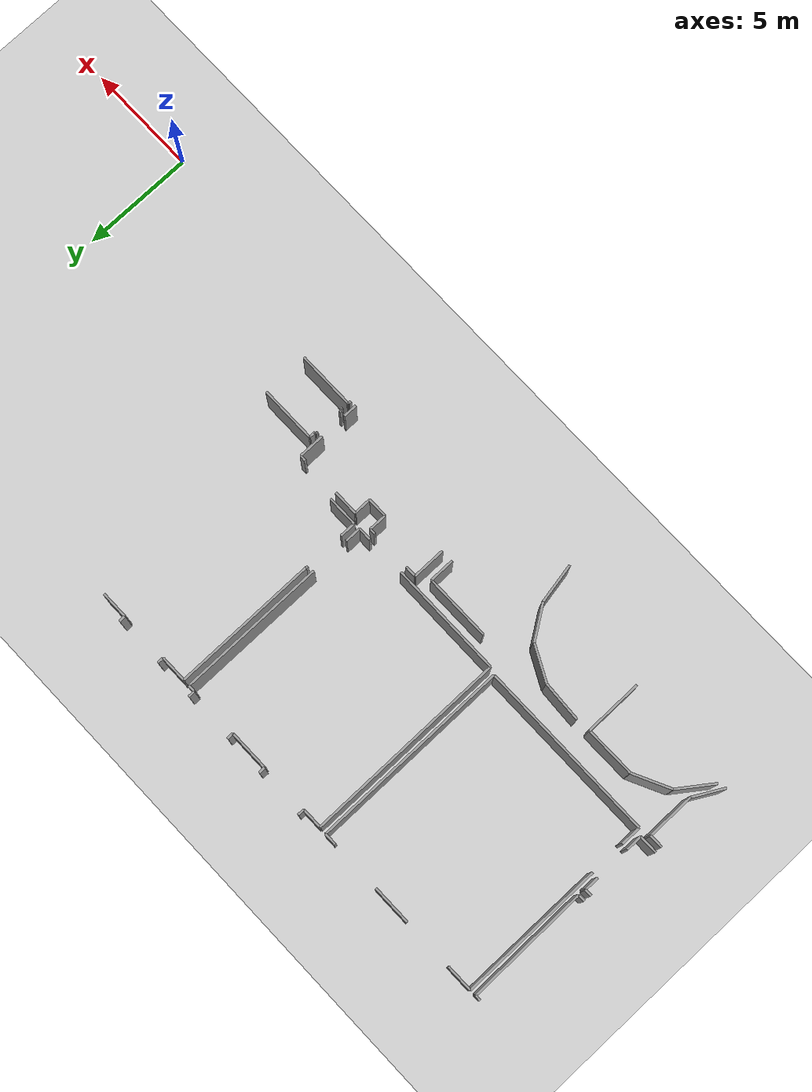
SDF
<sdf version="1.6">
 <world name="default">
  <model name="ground_plane">
   <static>1</static>
   <link name="link">
    <collision name="collision">
     <geometry><plane><normal>0 0 1</normal><size>100 100</size></plane></geometry>
     <surface><friction><ode><mu>100</mu><mu2>50</mu2></ode></friction></surface>
    </collision>
    <visual name="visual">
     <cast_shadows>0</cast_shadows>
     <geometry><plane><normal>0 0 1</normal><size>100 100</size></plane></geometry>
     <material>
      <script><uri>file://media/materials/scripts/gazebo.material</uri><name>Gazebo/Grey</name></script>
     </material>
    </visual>
   </link>
  </model>
  <model name="0510032268_A_40_1_102">
   <static>1</static>
   <link name="Wall_12">
    <collision name="Wall_12_Collision">
     <geometry><box><size>0.304701931683 0.1 2.5</size></box></geometry>
     <pose>0.152350965842 0 1.25 0 0 0</pose>
    </collision>
    <visual name="Wall_12_Visual">
     <pose>0.152350965842 0 1.25 0 0 0</pose>
     <geometry><box><size>0.304701931683 0.1 2.5</size></box></geometry>
     <material>
      <script><uri>file://media/materials/scripts/gazebo.material</uri><name>Gazebo/Grey</name></script>
      <ambient>1 1 1 1</ambient>
     </material>
    </visual>
    <pose>15.3115259854 -5.71620823838 0 0 0 3.14159265359</pose>
   </link>
   <link name="Wall_17">
    <collision name="Wall_17_Collision">
     <geometry><box><size>0.248205115184 0.1 2.5</size></box></geometry>
     <pose>0.124102557592 0 1.25 0 0 0</pose>
    </collision>
    <visual name="Wall_17_Visual">
     <pose>0.124102557592 0 1.25 0 0 0</pose>
     <geometry><box><size>0.248205115184 0.1 2.5</size></box></geometry>
     <material>
      <script><uri>file://media/materials/scripts/gazebo.material</uri><name>Gazebo/Grey</name></script>
      <ambient>1 1 1 1</ambient>
     </material>
    </visual>
    <pose>15.0234557008 -0.291752099587 0 0 0 0.0</pose>
   </link>
   <link name="Wall_18">
    <collision name="Wall_18_Collision">
     <geometry><box><size>5.42460262447 0.1 2.5</size></box></geometry>
     <pose>2.71230131223 0 1.25 0 0 0</pose>
    </collision>
    <visual name="Wall_18_Visual">
     <pose>2.71230131223 0 1.25 0 0 0</pose>
     <geometry><box><size>5.42460262447 0.1 2.5</size></box></geometry>
     <material>
      <script><uri>file://media/materials/scripts/gazebo.material</uri><name>Gazebo/Grey</name></script>
      <ambient>1 1 1 1</ambient>
     </material>
    </visual>
    <pose>15.271660816 -0.291752099587 0 0 0 -1.56344730402</pose>
   </link>
   <link name="Wall_19">
    <collision name="Wall_19_Collision">
     <geometry><box><size>8.01759653655 0.1 2.5</size></box></geometry>
     <pose>4.00879826828 0 1.25 0 0 0</pose>
    </collision>
    <visual name="Wall_19_Visual">
     <pose>4.00879826828 0 1.25 0 0 0</pose>
     <geometry><box><size>8.01759653655 0.1 2.5</size></box></geometry>
     <material>
      <script><uri>file://media/materials/scripts/gazebo.material</uri><name>Gazebo/Grey</name></script>
      <ambient>1 1 1 1</ambient>
     </material>
    </visual>
    <pose>23.5752962909 -9.15299210949 0 0 0 3.14159265359</pose>
   </link>
   <link name="Wall_20">
    <collision name="Wall_20_Collision">
     <geometry><box><size>0.89645847484 0.1 2.5</size></box></geometry>
     <pose>0.44822923742 0 1.25 0 0 0</pose>
    </collision>
    <visual name="Wall_20_Visual">
     <pose>0.44822923742 0 1.25 0 0 0</pose>
     <geometry><box><size>0.89645847484 0.1 2.5</size></box></geometry>
     <material>
      <script><uri>file://media/materials/scripts/gazebo.material</uri><name>Gazebo/Grey</name></script>
      <ambient>1 1 1 1</ambient>
     </material>
    </visual>
    <pose>15.5576997543 -9.15299210949 0 0 0 1.57079632679</pose>
   </link>
   <link name="Wall_21">
    <collision name="Wall_21_Collision">
     <geometry><box><size>6.41892706832 0.1 2.5</size></box></geometry>
     <pose>3.20946353416 0 1.25 0 0 0</pose>
    </collision>
    <visual name="Wall_21_Visual">
     <pose>3.20946353416 0 1.25 0 0 0</pose>
     <geometry><box><size>6.41892706832 0.1 2.5</size></box></geometry>
     <material>
      <script><uri>file://media/materials/scripts/gazebo.material</uri><name>Gazebo/Grey</name></script>
      <ambient>1 1 1 1</ambient>
     </material>
    </visual>
    <pose>15.5576997543 -6.69493623477 0 0 0 1.57079632679</pose>
   </link>
   <link name="Wall_22">
    <collision name="Wall_22_Collision">
     <geometry><box><size>1.1857983508 0.1 2.5</size></box></geometry>
     <pose>0.5928991754 0 1.25 0 0 0</pose>
    </collision>
    <visual name="Wall_22_Visual">
     <pose>0.5928991754 0 1.25 0 0 0</pose>
     <geometry><box><size>1.1857983508 0.1 2.5</size></box></geometry>
     <material>
      <script><uri>file://media/materials/scripts/gazebo.material</uri><name>Gazebo/Grey</name></script>
      <ambient>1 1 1 1</ambient>
     </material>
    </visual>
    <pose>15.5576997543 -0.27600916645 0 0 0 0.0</pose>
   </link>
   <link name="Wall_23">
    <collision name="Wall_23_Collision">
     <geometry><box><size>1.72956433972 0.1 2.5</size></box></geometry>
     <pose>0.864782169859 0 1.25 0 0 0</pose>
    </collision>
    <visual name="Wall_23_Visual">
     <pose>0.864782169859 0 1.25 0 0 0</pose>
     <geometry><box><size>1.72956433972 0.1 2.5</size></box></geometry>
     <material>
      <script><uri>file://media/materials/scripts/gazebo.material</uri><name>Gazebo/Grey</name></script>
      <ambient>1 1 1 1</ambient>
     </material>
    </visual>
    <pose>19.0285086745 -0.27600916645 0 0 0 0.0</pose>
   </link>
   <link name="Wall_24">
    <collision name="Wall_24_Collision">
     <geometry><box><size>0.523833404219 0.1 2.5</size></box></geometry>
     <pose>0.261916702109 0 1.25 0 0 0</pose>
    </collision>
    <visual name="Wall_24_Visual">
     <pose>0.261916702109 0 1.25 0 0 0</pose>
     <geometry><box><size>0.523833404219 0.1 2.5</size></box></geometry>
     <material>
      <script><uri>file://media/materials/scripts/gazebo.material</uri><name>Gazebo/Grey</name></script>
      <ambient>1 1 1 1</ambient>
     </material>
    </visual>
    <pose>23.0367356266 -0.27600916645 0 0 0 0.0</pose>
   </link>
   <link name="Wall_25">
    <collision name="Wall_25_Collision">
     <geometry><box><size>8.87699515958 0.1 2.5</size></box></geometry>
     <pose>4.43849757979 0 1.25 0 0 0</pose>
    </collision>
    <visual name="Wall_25_Visual">
     <pose>4.43849757979 0 1.25 0 0 0</pose>
     <geometry><box><size>8.87699515958 0.1 2.5</size></box></geometry>
     <material>
      <script><uri>file://media/materials/scripts/gazebo.material</uri><name>Gazebo/Grey</name></script>
      <ambient>1 1 1 1</ambient>
     </material>
    </visual>
    <pose>23.5605690309 -0.27600916645 0 0 0 -1.56913728942</pose>
   </link>
   <link name="Wall_31">
    <collision name="Wall_31_Collision">
     <geometry><box><size>0.31549345843 0.1 2.5</size></box></geometry>
     <pose>0.157746729215 0 1.25 0 0 0</pose>
    </collision>
    <visual name="Wall_31_Visual">
     <pose>0.157746729215 0 1.25 0 0 0</pose>
     <geometry><box><size>0.31549345843 0.1 2.5</size></box></geometry>
     <material>
      <script><uri>file://media/materials/scripts/gazebo.material</uri><name>Gazebo/Grey</name></script>
      <ambient>1 1 1 1</ambient>
     </material>
    </visual>
    <pose>14.9661971295 -6.03360608388 0 0 0 0.0</pose>
   </link>
   <link name="Wall_32">
    <collision name="Wall_32_Collision">
     <geometry><box><size>0.651300378973 0.1 2.5</size></box></geometry>
     <pose>0.325650189487 0 1.25 0 0 0</pose>
    </collision>
    <visual name="Wall_32_Visual">
     <pose>0.325650189487 0 1.25 0 0 0</pose>
     <geometry><box><size>0.651300378973 0.1 2.5</size></box></geometry>
     <material>
      <script><uri>file://media/materials/scripts/gazebo.material</uri><name>Gazebo/Grey</name></script>
      <ambient>1 1 1 1</ambient>
     </material>
    </visual>
    <pose>15.2816905879 -6.03360608388 0 0 0 -1.57079632679</pose>
   </link>
   <link name="Wall_33">
    <collision name="Wall_33_Collision">
     <geometry><box><size>0.729634167243 0.1 2.5</size></box></geometry>
     <pose>0.364817083622 0 1.25 0 0 0</pose>
    </collision>
    <visual name="Wall_33_Visual">
     <pose>0.364817083622 0 1.25 0 0 0</pose>
     <geometry><box><size>0.729634167243 0.1 2.5</size></box></geometry>
     <material>
      <script><uri>file://media/materials/scripts/gazebo.material</uri><name>Gazebo/Grey</name></script>
      <ambient>1 1 1 1</ambient>
     </material>
    </visual>
    <pose>15.2816905879 -8.23291923494 0 0 0 -1.57079632679</pose>
   </link>
   <link name="Wall_34">
    <collision name="Wall_34_Collision">
     <geometry><box><size>0.8145698307 0.1 2.5</size></box></geometry>
     <pose>0.40728491535 0 1.25 0 0 0</pose>
    </collision>
    <visual name="Wall_34_Visual">
     <pose>0.40728491535 0 1.25 0 0 0</pose>
     <geometry><box><size>0.8145698307 0.1 2.5</size></box></geometry>
     <material>
      <script><uri>file://media/materials/scripts/gazebo.material</uri><name>Gazebo/Grey</name></script>
      <ambient>1 1 1 1</ambient>
     </material>
    </visual>
    <pose>15.2816905879 -8.96255340219 0 0 0 3.14159265359</pose>
   </link>
   <link name="Wall_44">
    <collision name="Wall_44_Collision">
     <geometry><box><size>0.592645257124 0.1 2.5</size></box></geometry>
     <pose>0.296322628562 0 1.25 0 0 0</pose>
    </collision>
    <visual name="Wall_44_Visual">
     <pose>0.296322628562 0 1.25 0 0 0</pose>
     <geometry><box><size>0.592645257124 0.1 2.5</size></box></geometry>
     <material>
      <script><uri>file://media/materials/scripts/gazebo.material</uri><name>Gazebo/Grey</name></script>
      <ambient>1 1 1 1</ambient>
     </material>
    </visual>
    <pose>14.4508699875 -9.26116129524 0 0 0 0.0</pose>
   </link>
   <link name="Wall_45">
    <collision name="Wall_45_Collision">
     <geometry><box><size>2.13684925507 0.1 2.5</size></box></geometry>
     <pose>1.06842462753 0 1.25 0 0 0</pose>
    </collision>
    <visual name="Wall_45_Visual">
     <pose>1.06842462753 0 1.25 0 0 0</pose>
     <geometry><box><size>2.13684925507 0.1 2.5</size></box></geometry>
     <material>
      <script><uri>file://media/materials/scripts/gazebo.material</uri><name>Gazebo/Grey</name></script>
      <ambient>1 1 1 1</ambient>
     </material>
    </visual>
    <pose>15.0435152446 -9.26116129524 0 0 0 -1.57079632679</pose>
   </link>
   <link name="Wall_46">
    <collision name="Wall_46_Collision">
     <geometry><box><size>1.42423533648 0.1 2.5</size></box></geometry>
     <pose>0.71211766824 0 1.25 0 0 0</pose>
    </collision>
    <visual name="Wall_46_Visual">
     <pose>0.71211766824 0 1.25 0 0 0</pose>
     <geometry><box><size>1.42423533648 0.1 2.5</size></box></geometry>
     <material>
      <script><uri>file://media/materials/scripts/gazebo.material</uri><name>Gazebo/Grey</name></script>
      <ambient>1 1 1 1</ambient>
     </material>
    </visual>
    <pose>15.0435152446 -11.3980105503 0 0 0 -2.07759179302</pose>
   </link>
   <link name="Wall_105">
    <collision name="Wall_105_Collision">
     <geometry><box><size>1.72159726495 0.1 2.5</size></box></geometry>
     <pose>0.860798632477 0 1.25 0 0 0</pose>
    </collision>
    <visual name="Wall_105_Visual">
     <pose>0.860798632477 0 1.25 0 0 0</pose>
     <geometry><box><size>1.72159726495 0.1 2.5</size></box></geometry>
     <material>
      <script><uri>file://media/materials/scripts/gazebo.material</uri><name>Gazebo/Grey</name></script>
      <ambient>1 1 1 1</ambient>
     </material>
    </visual>
    <pose>14.7096127111 -12.5133465794 0 0 0 0.943800091569</pose>
   </link>
   <link name="Wall_106">
    <collision name="Wall_106_Collision">
     <geometry><box><size>1.73608395643 0.1 2.5</size></box></geometry>
     <pose>0.868041978216 0 1.25 0 0 0</pose>
    </collision>
    <visual name="Wall_106_Visual">
     <pose>0.868041978216 0 1.25 0 0 0</pose>
     <geometry><box><size>1.73608395643 0.1 2.5</size></box></geometry>
     <material>
      <script><uri>file://media/materials/scripts/gazebo.material</uri><name>Gazebo/Grey</name></script>
      <ambient>1 1 1 1</ambient>
     </material>
    </visual>
    <pose>15.7196996147 -11.1192082828 0 0 0 0.452854896431</pose>
   </link>
   <link name="Wall_107">
    <collision name="Wall_107_Collision">
     <geometry><box><size>2.23720974324 0.1 2.5</size></box></geometry>
     <pose>1.11860487162 0 1.25 0 0 0</pose>
    </collision>
    <visual name="Wall_107_Visual">
     <pose>1.11860487162 0 1.25 0 0 0</pose>
     <geometry><box><size>2.23720974324 0.1 2.5</size></box></geometry>
     <material>
      <script><uri>file://media/materials/scripts/gazebo.material</uri><name>Gazebo/Grey</name></script>
      <ambient>1 1 1 1</ambient>
     </material>
    </visual>
    <pose>17.280789178 -10.359611759 0 0 0 0.00749092168315</pose>
   </link>
   <link name="Wall_108">
    <collision name="Wall_108_Collision">
     <geometry><box><size>2.55443160396 0.1 2.5</size></box></geometry>
     <pose>1.27721580198 0 1.25 0 0 0</pose>
    </collision>
    <visual name="Wall_108_Visual">
     <pose>1.27721580198 0 1.25 0 0 0</pose>
     <geometry><box><size>2.55443160396 0.1 2.5</size></box></geometry>
     <material>
      <script><uri>file://media/materials/scripts/gazebo.material</uri><name>Gazebo/Grey</name></script>
      <ambient>1 1 1 1</ambient>
     </material>
    </visual>
    <pose>19.5179361522 -10.3428531527 0 0 0 -1.56751602047</pose>
   </link>
   <link name="Wall_119">
    <collision name="Wall_119_Collision">
     <geometry><box><size>1.78924825575 0.1 2.5</size></box></geometry>
     <pose>0.894624127873 0 1.25 0 0 0</pose>
    </collision>
    <visual name="Wall_119_Visual">
     <pose>0.894624127873 0 1.25 0 0 0</pose>
     <geometry><box><size>1.78924825575 0.1 2.5</size></box></geometry>
     <material>
      <script><uri>file://media/materials/scripts/gazebo.material</uri><name>Gazebo/Grey</name></script>
      <ambient>1 1 1 1</ambient>
     </material>
    </visual>
    <pose>20.1523509658 -10.2928312523 0 0 0 -0.0560141172236</pose>
   </link>
   <link name="Wall_120">
    <collision name="Wall_120_Collision">
     <geometry><box><size>1.66882417031 0.1 2.5</size></box></geometry>
     <pose>0.834412085157 0 1.25 0 0 0</pose>
    </collision>
    <visual name="Wall_120_Visual">
     <pose>0.834412085157 0 1.25 0 0 0</pose>
     <geometry><box><size>1.66882417031 0.1 2.5</size></box></geometry>
     <material>
      <script><uri>file://media/materials/scripts/gazebo.material</uri><name>Gazebo/Grey</name></script>
      <ambient>1 1 1 1</ambient>
     </material>
    </visual>
    <pose>21.9387929995 -10.3930020123 0 0 0 -0.47256166638</pose>
   </link>
   <link name="Wall_121">
    <collision name="Wall_121_Collision">
     <geometry><box><size>1.64161559582 0.1 2.5</size></box></geometry>
     <pose>0.820807797912 0 1.25 0 0 0</pose>
    </collision>
    <visual name="Wall_121_Visual">
     <pose>0.820807797912 0 1.25 0 0 0</pose>
     <geometry><box><size>1.64161559582 0.1 2.5</size></box></geometry>
     <material>
      <script><uri>file://media/materials/scripts/gazebo.material</uri><name>Gazebo/Grey</name></script>
      <ambient>1 1 1 1</ambient>
     </material>
    </visual>
    <pose>23.424722753 -11.1525985362 0 0 0 -0.97715242745</pose>
   </link>
   <link name="Wall_122">
    <collision name="Wall_122_Collision">
     <geometry><box><size>1.78289394022 0.1 2.5</size></box></geometry>
     <pose>0.891446970112 0 1.25 0 0 0</pose>
    </collision>
    <visual name="Wall_122_Visual">
     <pose>0.891446970112 0 1.25 0 0 0</pose>
     <geometry><box><size>1.78289394022 0.1 2.5</size></box></geometry>
     <material>
      <script><uri>file://media/materials/scripts/gazebo.material</uri><name>Gazebo/Grey</name></script>
      <ambient>1 1 1 1</ambient>
     </material>
    </visual>
    <pose>24.3430181996 -12.5133465794 0 0 0 -1.38718500258</pose>
   </link>
   <link name="Wall_136">
    <collision name="Wall_136_Collision">
     <geometry><box><size>1.45939529362 0.1 2.5</size></box></geometry>
     <pose>0.729697646812 0 1.25 0 0 0</pose>
    </collision>
    <visual name="Wall_136_Visual">
     <pose>0.729697646812 0 1.25 0 0 0</pose>
     <geometry><box><size>1.45939529362 0.1 2.5</size></box></geometry>
     <material>
      <script><uri>file://media/materials/scripts/gazebo.material</uri><name>Gazebo/Grey</name></script>
      <ambient>1 1 1 1</ambient>
     </material>
    </visual>
    <pose>28.4667779675 -11.0407475354 0 0 0 1.57079632679</pose>
   </link>
   <link name="Wall_137">
    <collision name="Wall_137_Collision">
     <geometry><box><size>0.51177228609 0.1 2.5</size></box></geometry>
     <pose>0.255886143045 0 1.25 0 0 0</pose>
    </collision>
    <visual name="Wall_137_Visual">
     <pose>0.255886143045 0 1.25 0 0 0</pose>
     <geometry><box><size>0.51177228609 0.1 2.5</size></box></geometry>
     <material>
      <script><uri>file://media/materials/scripts/gazebo.material</uri><name>Gazebo/Grey</name></script>
      <ambient>1 1 1 1</ambient>
     </material>
    </visual>
    <pose>28.4667779675 -9.58135224178 0 0 0 0.0</pose>
   </link>
   <link name="Wall_138">
    <collision name="Wall_138_Collision">
     <geometry><box><size>0.257219213996 0.1 2.5</size></box></geometry>
     <pose>0.128609606998 0 1.25 0 0 0</pose>
    </collision>
    <visual name="Wall_138_Visual">
     <pose>0.128609606998 0 1.25 0 0 0</pose>
     <geometry><box><size>0.257219213996 0.1 2.5</size></box></geometry>
     <material>
      <script><uri>file://media/materials/scripts/gazebo.material</uri><name>Gazebo/Grey</name></script>
      <ambient>1 1 1 1</ambient>
     </material>
    </visual>
    <pose>30.7540738013 -9.58135224178 0 0 0 0.0</pose>
   </link>
   <link name="Wall_139">
    <collision name="Wall_139_Collision">
     <geometry><box><size>0.776609048378 0.1 2.5</size></box></geometry>
     <pose>0.388304524189 0 1.25 0 0 0</pose>
    </collision>
    <visual name="Wall_139_Visual">
     <pose>0.388304524189 0 1.25 0 0 0</pose>
     <geometry><box><size>0.776609048378 0.1 2.5</size></box></geometry>
     <material>
      <script><uri>file://media/materials/scripts/gazebo.material</uri><name>Gazebo/Grey</name></script>
      <ambient>1 1 1 1</ambient>
     </material>
    </visual>
    <pose>31.0112930153 -9.58135224178 0 0 0 -1.57079632679</pose>
   </link>
   <link name="Wall_140">
    <collision name="Wall_140_Collision">
     <geometry><box><size>0.875764135313 0.1 2.5</size></box></geometry>
     <pose>0.437882067657 0 1.25 0 0 0</pose>
    </collision>
    <visual name="Wall_140_Visual">
     <pose>0.437882067657 0 1.25 0 0 0</pose>
     <geometry><box><size>0.875764135313 0.1 2.5</size></box></geometry>
     <material>
      <script><uri>file://media/materials/scripts/gazebo.material</uri><name>Gazebo/Grey</name></script>
      <ambient>1 1 1 1</ambient>
     </material>
    </visual>
    <pose>31.0112930153 -10.3579612902 0 0 0 0.0</pose>
   </link>
   <link name="Wall_141">
    <collision name="Wall_141_Collision">
     <geometry><box><size>0.77153068285 0.1 2.5</size></box></geometry>
     <pose>0.385765341425 0 1.25 0 0 0</pose>
    </collision>
    <visual name="Wall_141_Visual">
     <pose>0.385765341425 0 1.25 0 0 0</pose>
     <geometry><box><size>0.77153068285 0.1 2.5</size></box></geometry>
     <material>
      <script><uri>file://media/materials/scripts/gazebo.material</uri><name>Gazebo/Grey</name></script>
      <ambient>1 1 1 1</ambient>
     </material>
    </visual>
    <pose>31.8870571507 -10.3579612902 0 0 0 1.57079632679</pose>
   </link>
   <link name="Wall_142">
    <collision name="Wall_142_Collision">
     <geometry><box><size>1.10378274752 0.1 2.5</size></box></geometry>
     <pose>0.551891373761 0 1.25 0 0 0</pose>
    </collision>
    <visual name="Wall_142_Visual">
     <pose>0.551891373761 0 1.25 0 0 0</pose>
     <geometry><box><size>1.10378274752 0.1 2.5</size></box></geometry>
     <material>
      <script><uri>file://media/materials/scripts/gazebo.material</uri><name>Gazebo/Grey</name></script>
      <ambient>1 1 1 1</ambient>
     </material>
    </visual>
    <pose>31.8870571507 -9.58643060731 0 0 0 0.0</pose>
   </link>
   <link name="Wall_143">
    <collision name="Wall_143_Collision">
     <geometry><box><size>0.252521725883 0.1 2.5</size></box></geometry>
     <pose>0.126260862941 0 1.25 0 0 0</pose>
    </collision>
    <visual name="Wall_143_Visual">
     <pose>0.126260862941 0 1.25 0 0 0</pose>
     <geometry><box><size>0.252521725883 0.1 2.5</size></box></geometry>
     <material>
      <script><uri>file://media/materials/scripts/gazebo.material</uri><name>Gazebo/Grey</name></script>
      <ambient>1 1 1 1</ambient>
     </material>
    </visual>
    <pose>34.7638242632 -9.58643060731 0 0 0 0.0</pose>
   </link>
   <link name="Wall_144">
    <collision name="Wall_144_Collision">
     <geometry><box><size>1.14872628245 0.1 2.5</size></box></geometry>
     <pose>0.574363141223 0 1.25 0 0 0</pose>
    </collision>
    <visual name="Wall_144_Visual">
     <pose>0.574363141223 0 1.25 0 0 0</pose>
     <geometry><box><size>1.14872628245 0.1 2.5</size></box></geometry>
     <material>
      <script><uri>file://media/materials/scripts/gazebo.material</uri><name>Gazebo/Grey</name></script>
      <ambient>1 1 1 1</ambient>
     </material>
    </visual>
    <pose>35.016345989 -9.58643060731 0 0 0 -1.57079632679</pose>
   </link>
   <link name="Wall_145">
    <collision name="Wall_145_Collision">
     <geometry><box><size>0.617021411659 0.1 2.5</size></box></geometry>
     <pose>0.308510705829 0 1.25 0 0 0</pose>
    </collision>
    <visual name="Wall_145_Visual">
     <pose>0.308510705829 0 1.25 0 0 0</pose>
     <geometry><box><size>0.617021411659 0.1 2.5</size></box></geometry>
     <material>
      <script><uri>file://media/materials/scripts/gazebo.material</uri><name>Gazebo/Grey</name></script>
      <ambient>1 1 1 1</ambient>
     </material>
    </visual>
    <pose>35.016345989 -11.9163847116 0 0 0 -1.57079632679</pose>
   </link>
   <link name="Wall_173">
    <collision name="Wall_173_Collision">
     <geometry><box><size>2.9305977871 0.1 2.5</size></box></geometry>
     <pose>1.46529889355 0 1.25 0 0 0</pose>
    </collision>
    <visual name="Wall_173_Visual">
     <pose>1.46529889355 0 1.25 0 0 0</pose>
     <geometry><box><size>2.9305977871 0.1 2.5</size></box></geometry>
     <material>
      <script><uri>file://media/materials/scripts/gazebo.material</uri><name>Gazebo/Grey</name></script>
      <ambient>1 1 1 1</ambient>
     </material>
    </visual>
    <pose>24.989240213 -9.93810742013 0 0 0 0.0</pose>
   </link>
   <link name="Wall_174">
    <collision name="Wall_174_Collision">
     <geometry><box><size>1.11140029581 0.1 2.5</size></box></geometry>
     <pose>0.555700147907 0 1.25 0 0 0</pose>
    </collision>
    <visual name="Wall_174_Visual">
     <pose>0.555700147907 0 1.25 0 0 0</pose>
     <geometry><box><size>1.11140029581 0.1 2.5</size></box></geometry>
     <material>
      <script><uri>file://media/materials/scripts/gazebo.material</uri><name>Gazebo/Grey</name></script>
      <ambient>1 1 1 1</ambient>
     </material>
    </visual>
    <pose>27.9198380001 -9.93810742013 0 0 0 -1.57079632679</pose>
   </link>
   <link name="Wall_177">
    <collision name="Wall_177_Collision">
     <geometry><box><size>8.97778849877 0.1 2.5</size></box></geometry>
     <pose>4.48889424939 0 1.25 0 0 0</pose>
    </collision>
    <visual name="Wall_177_Visual">
     <pose>4.48889424939 0 1.25 0 0 0</pose>
     <geometry><box><size>8.97778849877 0.1 2.5</size></box></geometry>
     <material>
      <script><uri>file://media/materials/scripts/gazebo.material</uri><name>Gazebo/Grey</name></script>
      <ambient>1 1 1 1</ambient>
     </material>
    </visual>
    <pose>23.8962489923 -9.27474592302 0 0 0 1.57079632679</pose>
   </link>
   <link name="Wall_178">
    <collision name="Wall_178_Collision">
     <geometry><box><size>0.906869124172 0.1 2.5</size></box></geometry>
     <pose>0.453434562086 0 1.25 0 0 0</pose>
    </collision>
    <visual name="Wall_178_Visual">
     <pose>0.453434562086 0 1.25 0 0 0</pose>
     <geometry><box><size>0.906869124172 0.1 2.5</size></box></geometry>
     <material>
      <script><uri>file://media/materials/scripts/gazebo.material</uri><name>Gazebo/Grey</name></script>
      <ambient>1 1 1 1</ambient>
     </material>
    </visual>
    <pose>23.8962489923 -0.296957424253 0 0 0 0.0</pose>
   </link>
   <link name="Wall_179">
    <collision name="Wall_179_Collision">
     <geometry><box><size>0.295941751147 0.1 2.5</size></box></geometry>
     <pose>0.147970875574 0 1.25 0 0 0</pose>
    </collision>
    <visual name="Wall_179_Visual">
     <pose>0.147970875574 0 1.25 0 0 0</pose>
     <geometry><box><size>0.295941751147 0.1 2.5</size></box></geometry>
     <material>
      <script><uri>file://media/materials/scripts/gazebo.material</uri><name>Gazebo/Grey</name></script>
      <ambient>1 1 1 1</ambient>
     </material>
    </visual>
    <pose>24.8031181164 -0.296957424253 0 0 0 1.57079632679</pose>
   </link>
   <link name="Wall_180">
    <collision name="Wall_180_Collision">
     <geometry><box><size>0.287181570612 0.1 2.5</size></box></geometry>
     <pose>0.143590785306 0 1.25 0 0 0</pose>
    </collision>
    <visual name="Wall_180_Visual">
     <pose>0.143590785306 0 1.25 0 0 0</pose>
     <geometry><box><size>0.287181570612 0.1 2.5</size></box></geometry>
     <material>
      <script><uri>file://media/materials/scripts/gazebo.material</uri><name>Gazebo/Grey</name></script>
      <ambient>1 1 1 1</ambient>
     </material>
    </visual>
    <pose>27.0044626137 -0.00101567310561 0 0 0 -1.57079632679</pose>
   </link>
   <link name="Wall_181">
    <collision name="Wall_181_Collision">
     <geometry><box><size>1.79367870451 0.1 2.5</size></box></geometry>
     <pose>0.896839352254 0 1.25 0 0 0</pose>
    </collision>
    <visual name="Wall_181_Visual">
     <pose>0.896839352254 0 1.25 0 0 0</pose>
     <geometry><box><size>1.79367870451 0.1 2.5</size></box></geometry>
     <material>
      <script><uri>file://media/materials/scripts/gazebo.material</uri><name>Gazebo/Grey</name></script>
      <ambient>1 1 1 1</ambient>
     </material>
    </visual>
    <pose>27.0044626137 -0.288197243717 0 0 0 0.0</pose>
   </link>
   <link name="Wall_182">
    <collision name="Wall_182_Collision">
     <geometry><box><size>0.285023265262 0.1 2.5</size></box></geometry>
     <pose>0.142511632631 0 1.25 0 0 0</pose>
    </collision>
    <visual name="Wall_182_Visual">
     <pose>0.142511632631 0 1.25 0 0 0</pose>
     <geometry><box><size>0.285023265262 0.1 2.5</size></box></geometry>
     <material>
      <script><uri>file://media/materials/scripts/gazebo.material</uri><name>Gazebo/Grey</name></script>
      <ambient>1 1 1 1</ambient>
     </material>
    </visual>
    <pose>28.7981413182 -0.288197243717 0 0 0 1.57079632679</pose>
   </link>
   <link name="Wall_183">
    <collision name="Wall_183_Collision">
     <geometry><box><size>0.29225993614 0.1 2.5</size></box></geometry>
     <pose>0.14612996807 0 1.25 0 0 0</pose>
    </collision>
    <visual name="Wall_183_Visual">
     <pose>0.14612996807 0 1.25 0 0 0</pose>
     <geometry><box><size>0.29225993614 0.1 2.5</size></box></geometry>
     <material>
      <script><uri>file://media/materials/scripts/gazebo.material</uri><name>Gazebo/Grey</name></script>
      <ambient>1 1 1 1</ambient>
     </material>
    </visual>
    <pose>31.0068494455 -0.00317397845503 0 0 0 -1.57079632679</pose>
   </link>
   <link name="Wall_184">
    <collision name="Wall_184_Collision">
     <geometry><box><size>0.310415092902 0.1 2.5</size></box></geometry>
     <pose>0.155207546451 0 1.25 0 0 0</pose>
    </collision>
    <visual name="Wall_184_Visual">
     <pose>0.155207546451 0 1.25 0 0 0</pose>
     <geometry><box><size>0.310415092902 0.1 2.5</size></box></geometry>
     <material>
      <script><uri>file://media/materials/scripts/gazebo.material</uri><name>Gazebo/Grey</name></script>
      <ambient>1 1 1 1</ambient>
     </material>
    </visual>
    <pose>31.0068494455 -0.295433914595 0 0 0 0.0</pose>
   </link>
   <link name="Wall_185">
    <collision name="Wall_185_Collision">
     <geometry><box><size>6.55147240861 0.1 2.5</size></box></geometry>
     <pose>3.2757362043 0 1.25 0 0 0</pose>
    </collision>
    <visual name="Wall_185_Visual">
     <pose>3.2757362043 0 1.25 0 0 0</pose>
     <geometry><box><size>6.55147240861 0.1 2.5</size></box></geometry>
     <material>
      <script><uri>file://media/materials/scripts/gazebo.material</uri><name>Gazebo/Grey</name></script>
      <ambient>1 1 1 1</ambient>
     </material>
    </visual>
    <pose>31.3172645384 -0.295433914595 0 0 0 -1.57079632679</pose>
   </link>
   <link name="Wall_186">
    <collision name="Wall_186_Collision">
     <geometry><box><size>0.713256438415 0.1 2.5</size></box></geometry>
     <pose>0.356628219208 0 1.25 0 0 0</pose>
    </collision>
    <visual name="Wall_186_Visual">
     <pose>0.356628219208 0 1.25 0 0 0</pose>
     <geometry><box><size>0.713256438415 0.1 2.5</size></box></geometry>
     <material>
      <script><uri>file://media/materials/scripts/gazebo.material</uri><name>Gazebo/Grey</name></script>
      <ambient>1 1 1 1</ambient>
     </material>
    </visual>
    <pose>31.3172645384 -8.57647066292 0 0 0 -1.57079632679</pose>
   </link>
   <link name="Wall_187">
    <collision name="Wall_187_Collision">
     <geometry><box><size>0.598739295758 0.1 2.5</size></box></geometry>
     <pose>0.299369647879 0 1.25 0 0 0</pose>
    </collision>
    <visual name="Wall_187_Visual">
     <pose>0.299369647879 0 1.25 0 0 0</pose>
     <geometry><box><size>0.598739295758 0.1 2.5</size></box></geometry>
     <material>
      <script><uri>file://media/materials/scripts/gazebo.material</uri><name>Gazebo/Grey</name></script>
      <ambient>1 1 1 1</ambient>
     </material>
    </visual>
    <pose>31.3172645384 -9.28972710133 0 0 0 3.14159265359</pose>
   </link>
   <link name="Wall_188">
    <collision name="Wall_188_Collision">
     <geometry><box><size>5.05718554181 0.1 2.5</size></box></geometry>
     <pose>2.5285927709 0 1.25 0 0 0</pose>
    </collision>
    <visual name="Wall_188_Visual">
     <pose>2.5285927709 0 1.25 0 0 0</pose>
     <geometry><box><size>5.05718554181 0.1 2.5</size></box></geometry>
     <material>
      <script><uri>file://media/materials/scripts/gazebo.material</uri><name>Gazebo/Grey</name></script>
      <ambient>1 1 1 1</ambient>
     </material>
    </visual>
    <pose>28.9534123442 -9.28972710133 0 0 0 3.13863029437</pose>
   </link>
   <link name="Wall_189">
    <collision name="Wall_189_Collision">
     <geometry><box><size>6.40673899106 0.1 2.5</size></box></geometry>
     <pose>3.20336949553 0 1.25 0 0 0</pose>
    </collision>
    <visual name="Wall_189_Visual">
     <pose>3.20336949553 0 1.25 0 0 0</pose>
     <geometry><box><size>6.40673899106 0.1 2.5</size></box></geometry>
     <material>
      <script><uri>file://media/materials/scripts/gazebo.material</uri><name>Gazebo/Grey</name></script>
      <ambient>1 1 1 1</ambient>
     </material>
    </visual>
    <pose>31.6139680444 -6.70217290565 0 0 0 1.57079632679</pose>
   </link>
   <link name="Wall_190">
    <collision name="Wall_190_Collision">
     <geometry><box><size>1.18287829062 0.1 2.5</size></box></geometry>
     <pose>0.591439145311 0 1.25 0 0 0</pose>
    </collision>
    <visual name="Wall_190_Visual">
     <pose>0.591439145311 0 1.25 0 0 0</pose>
     <geometry><box><size>1.18287829062 0.1 2.5</size></box></geometry>
     <material>
      <script><uri>file://media/materials/scripts/gazebo.material</uri><name>Gazebo/Grey</name></script>
      <ambient>1 1 1 1</ambient>
     </material>
    </visual>
    <pose>31.6139680444 -0.295433914595 0 0 0 0.0</pose>
   </link>
   <link name="Wall_191">
    <collision name="Wall_191_Collision">
     <geometry><box><size>0.281468409392 0.1 2.5</size></box></geometry>
     <pose>0.140734204696 0 1.25 0 0 0</pose>
    </collision>
    <visual name="Wall_191_Visual">
     <pose>0.140734204696 0 1.25 0 0 0</pose>
     <geometry><box><size>0.281468409392 0.1 2.5</size></box></geometry>
     <material>
      <script><uri>file://media/materials/scripts/gazebo.material</uri><name>Gazebo/Grey</name></script>
      <ambient>1 1 1 1</ambient>
     </material>
    </visual>
    <pose>32.796846335 -0.295433914595 0 0 0 1.57079632679</pose>
   </link>
   <link name="Wall_192">
    <collision name="Wall_192_Collision">
     <geometry><box><size>0.285023265262 0.1 2.5</size></box></geometry>
     <pose>0.142511632631 0 1.25 0 0 0</pose>
    </collision>
    <visual name="Wall_192_Visual">
     <pose>0.142511632631 0 1.25 0 0 0</pose>
     <geometry><box><size>0.285023265262 0.1 2.5</size></box></geometry>
     <material>
      <script><uri>file://media/materials/scripts/gazebo.material</uri><name>Gazebo/Grey</name></script>
      <ambient>1 1 1 1</ambient>
     </material>
    </visual>
    <pose>35.0127911332 -0.0139655052021 0 0 0 -1.57079632679</pose>
   </link>
   <link name="Wall_193">
    <collision name="Wall_193_Collision">
     <geometry><box><size>1.20179520221 0.1 2.5</size></box></geometry>
     <pose>0.600897601107 0 1.25 0 0 0</pose>
    </collision>
    <visual name="Wall_193_Visual">
     <pose>0.600897601107 0 1.25 0 0 0</pose>
     <geometry><box><size>1.20179520221 0.1 2.5</size></box></geometry>
     <material>
      <script><uri>file://media/materials/scripts/gazebo.material</uri><name>Gazebo/Grey</name></script>
      <ambient>1 1 1 1</ambient>
     </material>
    </visual>
    <pose>35.0127911332 -0.298988770464 0 0 0 0.0</pose>
   </link>
   <link name="Wall_197">
    <collision name="Wall_197_Collision">
     <geometry><box><size>1.35719318737 0.1 2.5</size></box></geometry>
     <pose>0.678596593686 0 1.25 0 0 0</pose>
    </collision>
    <visual name="Wall_197_Visual">
     <pose>0.678596593686 0 1.25 0 0 0</pose>
     <geometry><box><size>1.35719318737 0.1 2.5</size></box></geometry>
     <material>
      <script><uri>file://media/materials/scripts/gazebo.material</uri><name>Gazebo/Grey</name></script>
      <ambient>1 1 1 1</ambient>
     </material>
    </visual>
    <pose>32.9593540319 -9.27081018974 0 0 0 3.14159265359</pose>
   </link>
   <link name="Wall_198">
    <collision name="Wall_198_Collision">
     <geometry><box><size>0.712494683586 0.1 2.5</size></box></geometry>
     <pose>0.356247341793 0 1.25 0 0 0</pose>
    </collision>
    <visual name="Wall_198_Visual">
     <pose>0.356247341793 0 1.25 0 0 0</pose>
     <geometry><box><size>0.712494683586 0.1 2.5</size></box></geometry>
     <material>
      <script><uri>file://media/materials/scripts/gazebo.material</uri><name>Gazebo/Grey</name></script>
      <ambient>1 1 1 1</ambient>
     </material>
    </visual>
    <pose>31.6021608445 -9.27081018974 0 0 0 1.57079632679</pose>
   </link>
   <link name="Wall_199">
    <collision name="Wall_199_Collision">
     <geometry><box><size>0.101242489911 0.1 2.5</size></box></geometry>
     <pose>0.0506212449554 0 1.25 0 0 0</pose>
    </collision>
    <visual name="Wall_199_Visual">
     <pose>0.0506212449554 0 1.25 0 0 0</pose>
     <geometry><box><size>0.101242489911 0.1 2.5</size></box></geometry>
     <material>
      <script><uri>file://media/materials/scripts/gazebo.material</uri><name>Gazebo/Grey</name></script>
      <ambient>1 1 1 1</ambient>
     </material>
    </visual>
    <pose>31.6021608445 -6.80272454311 0 0 0 1.45390736244</pose>
   </link>
   <link name="Wall_200">
    <collision name="Wall_200_Collision">
     <geometry><box><size>0.0906488246758 0.1 2.5</size></box></geometry>
     <pose>0.0453244123379 0 1.25 0 0 0</pose>
    </collision>
    <visual name="Wall_200_Visual">
     <pose>0.0453244123379 0 1.25 0 0 0</pose>
     <geometry><box><size>0.0906488246758 0.1 2.5</size></box></geometry>
     <material>
      <script><uri>file://media/materials/scripts/gazebo.material</uri><name>Gazebo/Grey</name></script>
      <ambient>1 1 1 1</ambient>
     </material>
    </visual>
    <pose>35.2747078353 -10.716113019 0 0 0 1.57079632679</pose>
   </link>
   <link name="Wall_201">
    <collision name="Wall_201_Collision">
     <geometry><box><size>0.0525610832154 0.1 2.5</size></box></geometry>
     <pose>0.0262805416077 0 1.25 0 0 0</pose>
    </collision>
    <visual name="Wall_201_Visual">
     <pose>0.0262805416077 0 1.25 0 0 0</pose>
     <geometry><box><size>0.0525610832154 0.1 2.5</size></box></geometry>
     <material>
      <script><uri>file://media/materials/scripts/gazebo.material</uri><name>Gazebo/Grey</name></script>
      <ambient>1 1 1 1</ambient>
     </material>
    </visual>
    <pose>35.2747078353 -10.6254641943 0 0 0 0.0</pose>
   </link>
   <link name="Wall_202">
    <collision name="Wall_202_Collision">
     <geometry><box><size>0.276770921279 0.1 2.5</size></box></geometry>
     <pose>0.138385460639 0 1.25 0 0 0</pose>
    </collision>
    <visual name="Wall_202_Visual">
     <pose>0.138385460639 0 1.25 0 0 0</pose>
     <geometry><box><size>0.276770921279 0.1 2.5</size></box></geometry>
     <material>
      <script><uri>file://media/materials/scripts/gazebo.material</uri><name>Gazebo/Grey</name></script>
      <ambient>1 1 1 1</ambient>
     </material>
    </visual>
    <pose>35.3272689185 -10.6254641943 0 0 0 1.57079632679</pose>
   </link>
   <link name="Wall_203">
    <collision name="Wall_203_Collision">
     <geometry><box><size>2.50338028705 0.1 2.5</size></box></geometry>
     <pose>1.25169014353 0 1.25 0 0 0</pose>
    </collision>
    <visual name="Wall_203_Visual">
     <pose>1.25169014353 0 1.25 0 0 0</pose>
     <geometry><box><size>2.50338028705 0.1 2.5</size></box></geometry>
     <material>
      <script><uri>file://media/materials/scripts/gazebo.material</uri><name>Gazebo/Grey</name></script>
      <ambient>1 1 1 1</ambient>
     </material>
    </visual>
    <pose>35.3272689185 -10.3486932731 0 0 0 0.0</pose>
   </link>
   <link name="Wall_207">
    <collision name="Wall_207_Collision">
     <geometry><box><size>0.0878557236354 0.1 2.5</size></box></geometry>
     <pose>0.0439278618177 0 1.25 0 0 0</pose>
    </collision>
    <visual name="Wall_207_Visual">
     <pose>0.0439278618177 0 1.25 0 0 0</pose>
     <geometry><box><size>0.0878557236354 0.1 2.5</size></box></geometry>
     <material>
      <script><uri>file://media/materials/scripts/gazebo.material</uri><name>Gazebo/Grey</name></script>
      <ambient>1 1 1 1</ambient>
     </material>
    </visual>
    <pose>35.3112720671 -12.0821933461 0 0 0 1.57079632679</pose>
   </link>
   <link name="Wall_208">
    <collision name="Wall_208_Collision">
     <geometry><box><size>0.038468618875 0.1 2.5</size></box></geometry>
     <pose>0.0192343094375 0 1.25 0 0 0</pose>
    </collision>
    <visual name="Wall_208_Visual">
     <pose>0.0192343094375 0 1.25 0 0 0</pose>
     <geometry><box><size>0.038468618875 0.1 2.5</size></box></geometry>
     <material>
      <script><uri>file://media/materials/scripts/gazebo.material</uri><name>Gazebo/Grey</name></script>
      <ambient>1 1 1 1</ambient>
     </material>
    </visual>
    <pose>35.3112720671 -11.9943376224 0 0 0 3.14159265359</pose>
   </link>
   <link name="Wall_209">
    <collision name="Wall_209_Collision">
     <geometry><box><size>0.0987742095207 0.1 2.5</size></box></geometry>
     <pose>0.0493871047603 0 1.25 0 0 0</pose>
    </collision>
    <visual name="Wall_209_Visual">
     <pose>0.0493871047603 0 1.25 0 0 0</pose>
     <geometry><box><size>0.0987742095207 0.1 2.5</size></box></geometry>
     <material>
      <script><uri>file://media/materials/scripts/gazebo.material</uri><name>Gazebo/Grey</name></script>
      <ambient>1 1 1 1</ambient>
     </material>
    </visual>
    <pose>35.2728034482 -11.9943376224 0 0 0 1.57079632679</pose>
   </link>
   <link name="Wall_210">
    <collision name="Wall_210_Collision">
     <geometry><box><size>0.0050688346491 0.1 2.5</size></box></geometry>
     <pose>0.00253441732455 0 1.25 0 0 0</pose>
    </collision>
    <visual name="Wall_210_Visual">
     <pose>0.00253441732455 0 1.25 0 0 0</pose>
     <geometry><box><size>0.0050688346491 0.1 2.5</size></box></geometry>
     <material>
      <script><uri>file://media/materials/scripts/gazebo.material</uri><name>Gazebo/Grey</name></script>
      <ambient>1 1 1 1</ambient>
     </material>
    </visual>
    <pose>35.2728034482 -10.7114155309 0 0 0 -1.18563882043</pose>
   </link>
   <link name="Wall_211">
    <collision name="Wall_211_Collision">
     <geometry><box><size>2.52635989107 0.1 2.5</size></box></geometry>
     <pose>1.26317994553 0 1.25 0 0 0</pose>
    </collision>
    <visual name="Wall_211_Visual">
     <pose>1.26317994553 0 1.25 0 0 0</pose>
     <geometry><box><size>2.52635989107 0.1 2.5</size></box></geometry>
     <material>
      <script><uri>file://media/materials/scripts/gazebo.material</uri><name>Gazebo/Grey</name></script>
      <ambient>1 1 1 1</ambient>
     </material>
    </visual>
    <pose>35.3209209616 -12.3790238112 0 0 0 0.0</pose>
   </link>
   <link name="Wall_217">
    <collision name="Wall_217_Collision">
     <geometry><box><size>0.122642527503 0.1 2.5</size></box></geometry>
     <pose>0.0613212637513 0 1.25 0 0 0</pose>
    </collision>
    <visual name="Wall_217_Visual">
     <pose>0.0613212637513 0 1.25 0 0 0</pose>
     <geometry><box><size>0.122642527503 0.1 2.5</size></box></geometry>
     <material>
      <script><uri>file://media/materials/scripts/gazebo.material</uri><name>Gazebo/Grey</name></script>
      <ambient>1 1 1 1</ambient>
     </material>
    </visual>
    <pose>35.2783896503 -12.5153779256 0 0 0 1.57079632679</pose>
   </link>
   <link name="Wall_218">
    <collision name="Wall_218_Collision">
     <geometry><box><size>0.0446869114697 0.1 2.5</size></box></geometry>
     <pose>0.0223434557349 0 1.25 0 0 0</pose>
    </collision>
    <visual name="Wall_218_Visual">
     <pose>0.0223434557349 0 1.25 0 0 0</pose>
     <geometry><box><size>0.0446869114697 0.1 2.5</size></box></geometry>
     <material>
      <script><uri>file://media/materials/scripts/gazebo.material</uri><name>Gazebo/Grey</name></script>
      <ambient>1 1 1 1</ambient>
     </material>
    </visual>
    <pose>35.2783896503 -12.3927353981 0 0 0 0.311867677604</pose>
   </link>
   <pose>-47.9 14.7321752544 0 0 0 0</pose>
  </model>
 </world>
</sdf>
